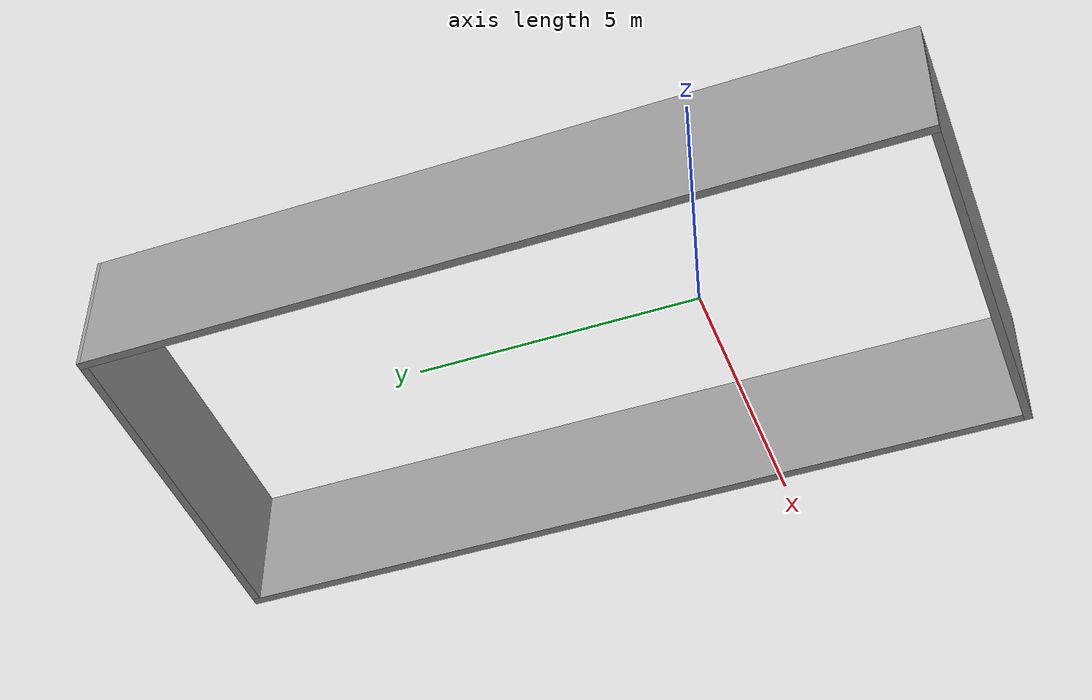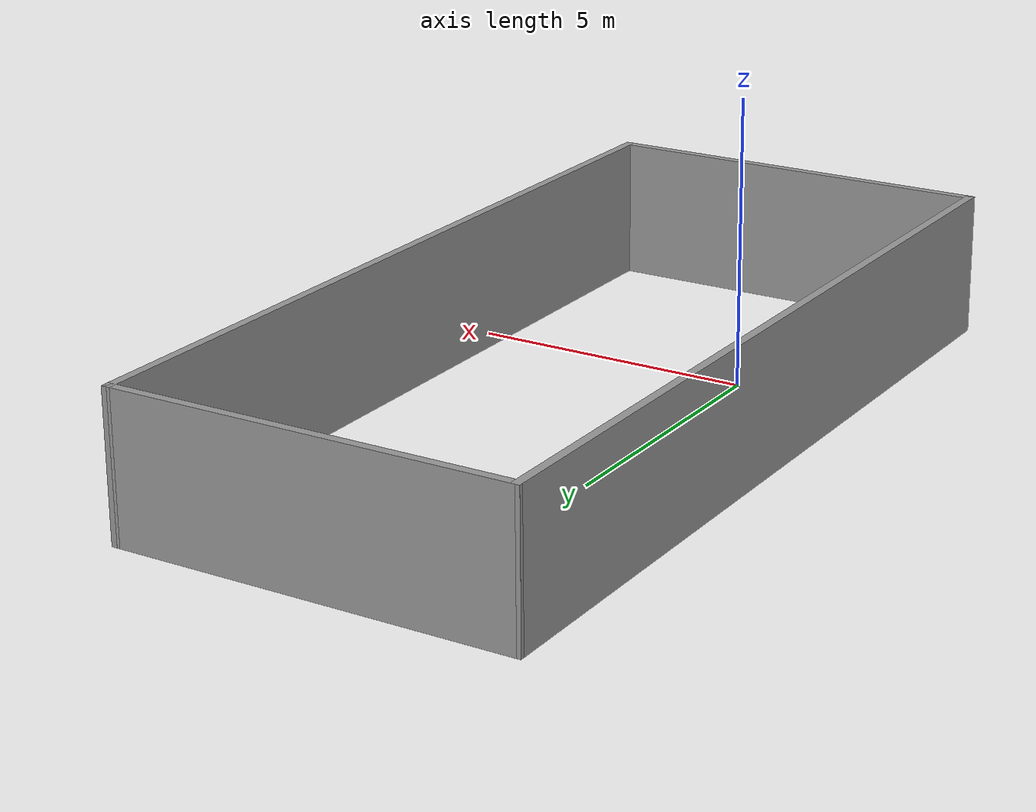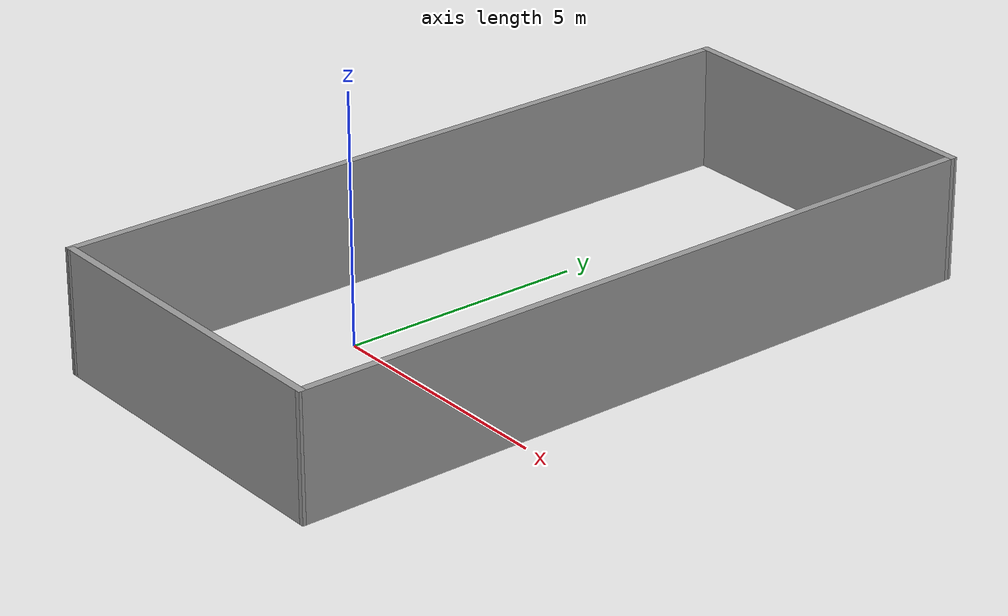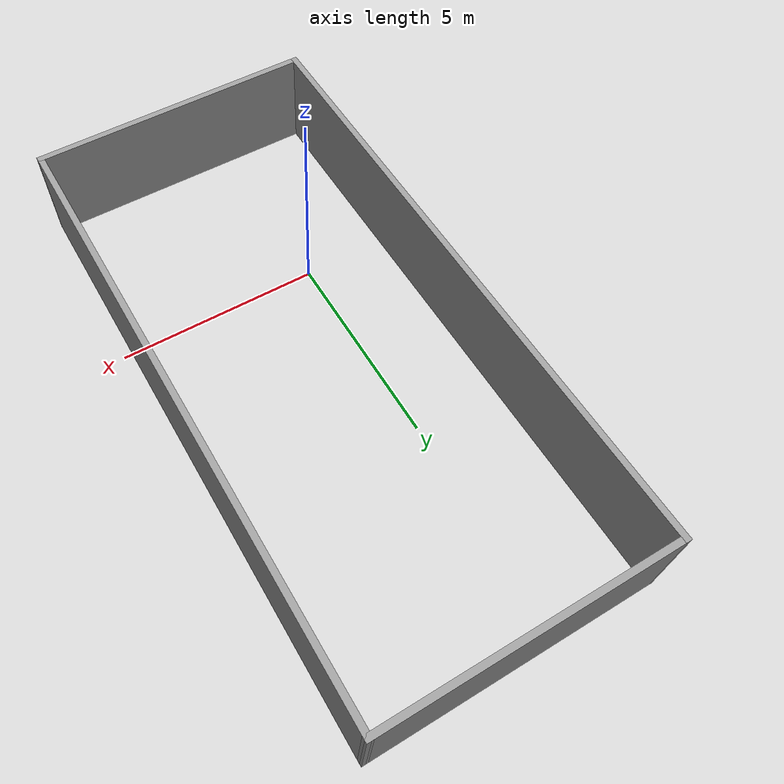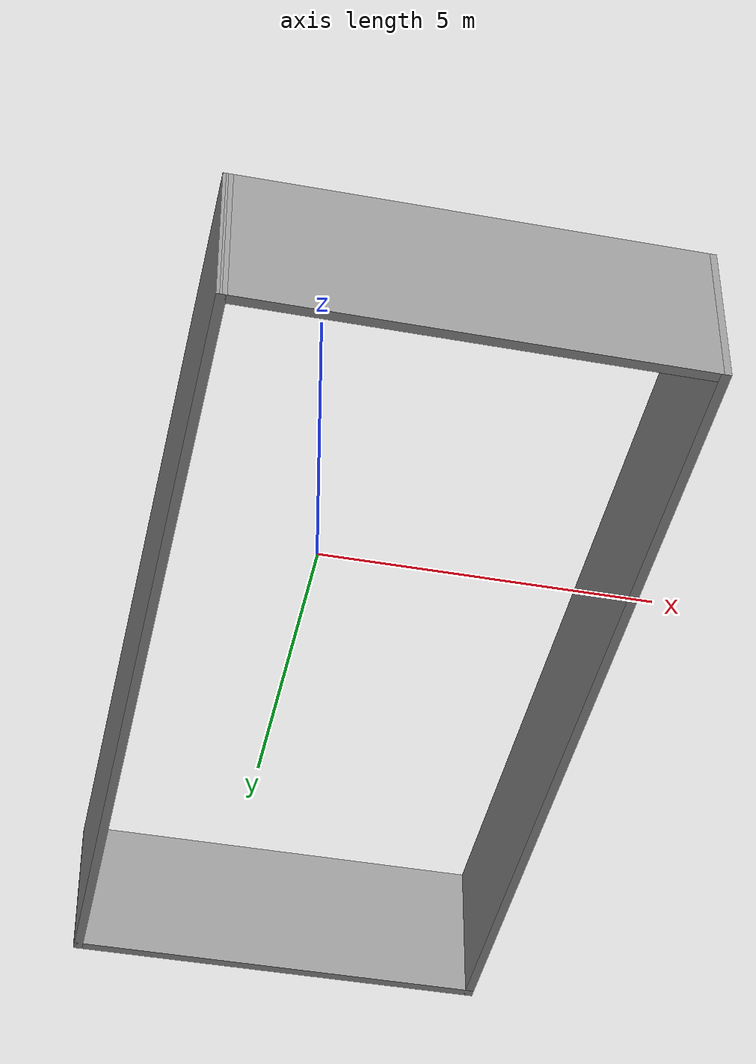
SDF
<?xml version='1.0'?>
<sdf version='1.6'>
  <model name='Untitled'>
    <pose frame=''>1.27826 2.92703 0 0 -0 0</pose>
    <link name='Wall_0'>
      <collision name='Wall_0_Collision'>
        <geometry>
          <box>
            <size>15 0.15 2.5</size>
          </box>
        </geometry>
        <pose frame=''>0 0 1.25 0 -0 0</pose>
      </collision>
      <visual name='Wall_0_Visual'>
        <pose frame=''>0 0 1.25 0 -0 0</pose>
        <geometry>
          <box>
            <size>15 0.15 2.5</size>
          </box>
        </geometry>
        <material>
          <script>
            <uri>file://media/materials/scripts/gazebo.material</uri>
            <name>Gazebo/Grey</name>
          </script>
          <ambient>1 1 1 1</ambient>
        </material>
        <meta>
          <layer>0</layer>
        </meta>
      </visual>
      <pose frame=''>-3.44826 -0.012027 0 0 -0 1.5708</pose>
    </link>
    <link name='Wall_1'>
      <collision name='Wall_1_Collision'>
        <geometry>
          <box>
            <size>7 0.15 2.5</size>
          </box>
        </geometry>
        <pose frame=''>0 0 1.25 0 -0 0</pose>
      </collision>
      <visual name='Wall_1_Visual'>
        <pose frame=''>0 0 1.25 0 -0 0</pose>
        <geometry>
          <box>
            <size>7 0.15 2.5</size>
          </box>
        </geometry>
        <material>
          <script>
            <uri>file://media/materials/scripts/gazebo.material</uri>
            <name>Gazebo/Grey</name>
          </script>
          <ambient>1 1 1 1</ambient>
        </material>
        <meta>
          <layer>0</layer>
        </meta>
      </visual>
      <pose frame=''>-0.023283 7.42492 0 0 -0 0.003488</pose>
    </link>
    <link name='Wall_2'>
      <collision name='Wall_2_Collision'>
        <geometry>
          <box>
            <size>14.9999 0.15 2.5</size>
          </box>
        </geometry>
        <pose frame=''>0 0 1.25 0 -0 0</pose>
      </collision>
      <visual name='Wall_2_Visual'>
        <pose frame=''>0 0 1.25 0 -0 0</pose>
        <geometry>
          <box>
            <size>14.9999 0.15 2.5</size>
          </box>
        </geometry>
        <material>
          <script>
            <uri>file://media/materials/scripts/gazebo.material</uri>
            <name>Gazebo/Grey</name>
          </script>
          <ambient>1 1 1 1</ambient>
        </material>
        <meta>
          <layer>0</layer>
        </meta>
      </visual>
      <pose frame=''>3.42498 0.011946 0 0 0 -1.56766</pose>
    </link>
    <link name='Wall_3'>
      <collision name='Wall_3_Collision'>
        <geometry>
          <box>
            <size>7 0.15 2.5</size>
          </box>
        </geometry>
        <pose frame=''>0 0 1.25 0 -0 0</pose>
      </collision>
      <visual name='Wall_3_Visual'>
        <pose frame=''>0 0 1.25 0 -0 0</pose>
        <geometry>
          <box>
            <size>7 0.15 2.5</size>
          </box>
        </geometry>
        <material>
          <script>
            <uri>file://media/materials/scripts/gazebo.material</uri>
            <name>Gazebo/Grey</name>
          </script>
          <ambient>1 1 1 1</ambient>
        </material>
        <meta>
          <layer>0</layer>
        </meta>
      </visual>
      <pose frame=''>0.023282 -7.42492 0 0 0 -3.1381</pose>
    </link>
    <static>1</static>
  </model>
</sdf>
